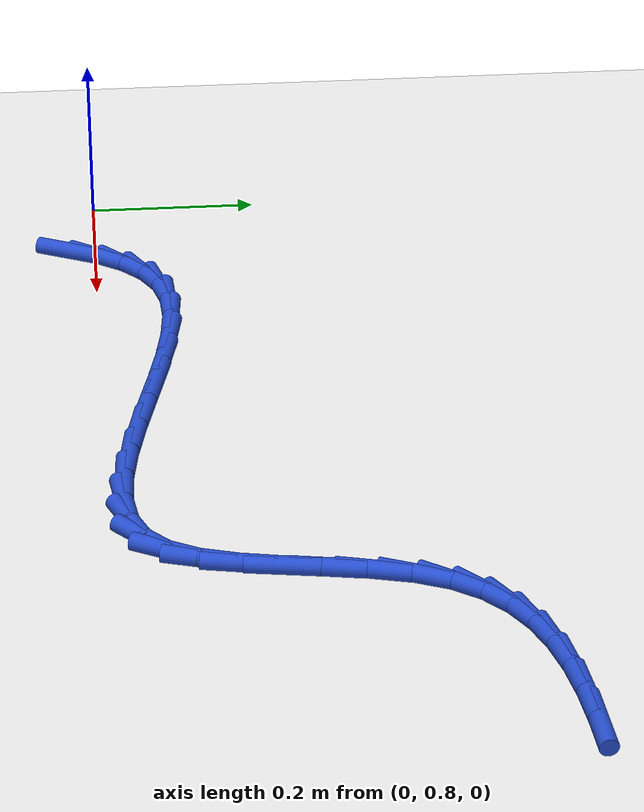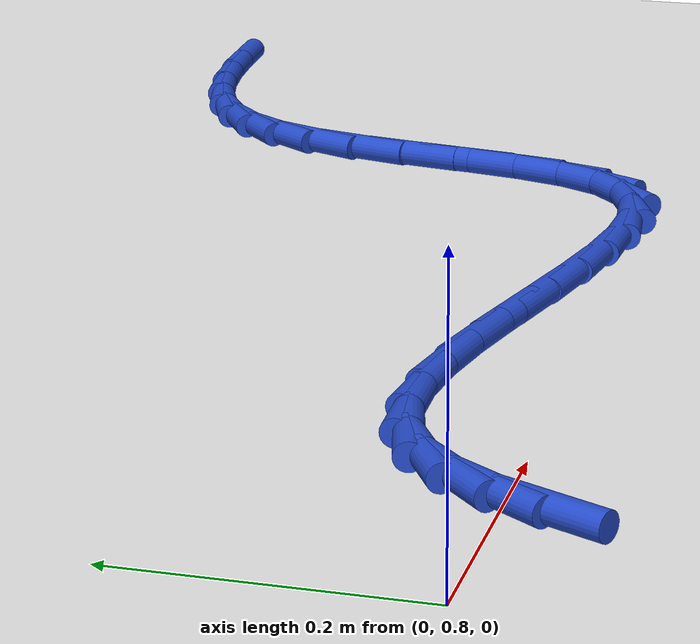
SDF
<sdf version="1.6">
 <world name="default">
  <model name="ground_plane">
   <static>1</static>
   <link name="link">
    <collision name="collision">
     <geometry><plane><normal>0 0 1</normal><size>100 100</size></plane></geometry>
     <surface><friction><ode><mu>100</mu><mu2>50</mu2></ode></friction></surface>
    </collision>
    <visual name="visual">
     <cast_shadows>0</cast_shadows>
     <geometry><plane><normal>0 0 1</normal><size>100 100</size></plane></geometry>
     <material>
      <script><uri>file://media/materials/scripts/gazebo.material</uri><name>Gazebo/WhiteGlow</name></script>
     </material>
    </visual>
   </link>
  </model>
  <model name="line">
   <link name="link_17">
    <pose>0.11488590247011861 0.7683069570517295 0.01 0 1.57 1.1441653393790003</pose>
    <collision name="collision">
     <geometry><cylinder><radius>0.01</radius><length>0.08</length></cylinder></geometry>
    </collision>
    <visual name="visual">
     <material>
      <script><name>Gazebo/Blue</name><uri>file://media/materials/scripts/gazebo.material</uri></script>
     </material>
     <geometry><cylinder><radius>0.01</radius><length>0.08</length></cylinder></geometry>
    </visual>
   </link>
   <link name="link_18">
    <pose>0.13100987990893936 0.8037793783833346 0.01 0 1.57 0.9838257909820284</pose>
    <collision name="collision">
     <geometry><cylinder><radius>0.01</radius><length>0.08</length></cylinder></geometry>
    </collision>
    <visual name="visual">
     <material>
      <script><name>Gazebo/Blue</name><uri>file://media/materials/scripts/gazebo.material</uri></script>
     </material>
     <geometry><cylinder><radius>0.01</radius><length>0.08</length></cylinder></geometry>
    </visual>
   </link>
   <link name="link_19">
    <pose>0.1509992072125109 0.8338305219257445 0.01 0 1.57 0.7740681221431515</pose>
    <collision name="collision">
     <geometry><cylinder><radius>0.01</radius><length>0.08</length></cylinder></geometry>
    </collision>
    <visual name="visual">
     <material>
      <script><name>Gazebo/Blue</name><uri>file://media/materials/scripts/gazebo.material</uri></script>
     </material>
     <geometry><cylinder><radius>0.01</radius><length>0.08</length></cylinder></geometry>
    </visual>
   </link>
   <link name="link_20">
    <pose>0.17538833152242303 0.8576731550496365 0.01 0 1.57 0.5214742011759924</pose>
    <collision name="collision">
     <geometry><cylinder><radius>0.01</radius><length>0.08</length></cylinder></geometry>
    </collision>
    <visual name="visual">
     <material>
      <script><name>Gazebo/Blue</name><uri>file://media/materials/scripts/gazebo.material</uri></script>
     </material>
     <geometry><cylinder><radius>0.01</radius><length>0.08</length></cylinder></geometry>
    </visual>
   </link>
   <link name="link_21">
    <pose>0.2047116999802653 0.8745200451256875 0.01 0 1.57 0.2564635529898381</pose>
    <collision name="collision">
     <geometry><cylinder><radius>0.01</radius><length>0.08</length></cylinder></geometry>
    </collision>
    <visual name="visual">
     <material>
      <script><name>Gazebo/Blue</name><uri>file://media/materials/scripts/gazebo.material</uri></script>
     </material>
     <geometry><cylinder><radius>0.01</radius><length>0.08</length></cylinder></geometry>
    </visual>
   </link>
   <link name="link_22">
    <pose>0.23946821857374254 0.8836345380011811 0.01 0 1.57 0.04445835535896166</pose>
    <collision name="collision">
     <geometry><cylinder><radius>0.01</radius><length>0.08</length></cylinder></geometry>
    </collision>
    <visual name="visual">
     <material>
      <script><name>Gazebo/Blue</name><uri>file://media/materials/scripts/gazebo.material</uri></script>
     </material>
     <geometry><cylinder><radius>0.01</radius><length>0.08</length></cylinder></geometry>
    </visual>
   </link>
   <link name="link_23">
    <pose>0.2793631770077128 0.885409371740848 0.01 0 1.57 -0.0921269365347066</pose>
    <collision name="collision">
     <geometry><cylinder><radius>0.01</radius><length>0.08</length></cylinder></geometry>
    </collision>
    <visual name="visual">
     <material>
      <script><name>Gazebo/Blue</name><uri>file://media/materials/scripts/gazebo.material</uri></script>
     </material>
     <geometry><cylinder><radius>0.01</radius><length>0.08</length></cylinder></geometry>
    </visual>
   </link>
   <link name="link_24">
    <pose>0.32332126622617946 0.8813481514424115 0.01 0 1.57 -0.17607831083229047</pose>
    <collision name="collision">
     <geometry><cylinder><radius>0.01</radius><length>0.08</length></cylinder></geometry>
    </collision>
    <visual name="visual">
     <material>
      <script><name>Gazebo/Blue</name><uri>file://media/materials/scripts/gazebo.material</uri></script>
     </material>
     <geometry><cylinder><radius>0.01</radius><length>0.08</length></cylinder></geometry>
    </visual>
   </link>
   <link name="link_25">
    <pose>0.370234239746904 0.8730013553256086 0.01 0 1.57 -0.22347979675174884</pose>
    <collision name="collision">
     <geometry><cylinder><radius>0.01</radius><length>0.08</length></cylinder></geometry>
    </collision>
    <visual name="visual">
     <material>
      <script><name>Gazebo/Blue</name><uri>file://media/materials/scripts/gazebo.material</uri></script>
     </material>
     <geometry><cylinder><radius>0.01</radius><length>0.08</length></cylinder></geometry>
    </visual>
   </link>
   <link name="link_26">
    <pose>0.4189938510876488 0.8619194616101782 0.01 0 1.57 -0.24292428889392356</pose>
    <collision name="collision">
     <geometry><cylinder><radius>0.01</radius><length>0.08</length></cylinder></geometry>
    </collision>
    <visual name="visual">
     <material>
      <script><name>Gazebo/Blue</name><uri>file://media/materials/scripts/gazebo.material</uri></script>
     </material>
     <geometry><cylinder><radius>0.01</radius><length>0.08</length></cylinder></geometry>
    </visual>
   </link>
   <link name="link_27">
    <pose>0.46849185376617486 0.8496529485158576 0.01 0 1.57 -0.2376590550075612</pose>
    <collision name="collision">
     <geometry><cylinder><radius>0.01</radius><length>0.08</length></cylinder></geometry>
    </collision>
    <visual name="visual">
     <material>
      <script><name>Gazebo/Blue</name><uri>file://media/materials/scripts/gazebo.material</uri></script>
     </material>
     <geometry><cylinder><radius>0.01</radius><length>0.08</length></cylinder></geometry>
    </visual>
   </link>
   <link name="link_28">
    <pose>0.5176200013002447 0.8377522942623854 0.01 0 1.57 -0.20654608577921593</pose>
    <collision name="collision">
     <geometry><cylinder><radius>0.01</radius><length>0.08</length></cylinder></geometry>
    </collision>
    <visual name="visual">
     <material>
      <script><name>Gazebo/Blue</name><uri>file://media/materials/scripts/gazebo.material</uri></script>
     </material>
     <geometry><cylinder><radius>0.01</radius><length>0.08</length></cylinder></geometry>
    </visual>
   </link>
   <link name="link_29">
    <pose>0.5652700472076201 0.8277679770694997 0.01 0 1.57 -0.14363270235722891</pose>
    <collision name="collision">
     <geometry><cylinder><radius>0.01</radius><length>0.08</length></cylinder></geometry>
    </collision>
    <visual name="visual">
     <material>
      <script><name>Gazebo/Blue</name><uri>file://media/materials/scripts/gazebo.material</uri></script>
     </material>
     <geometry><cylinder><radius>0.01</radius><length>0.08</length></cylinder></geometry>
    </visual>
   </link>
   <link name="link_30">
    <pose>0.6103337450060623 0.8212504751569379 0.01 0 1.57 -0.03624809785809501</pose>
    <collision name="collision">
     <geometry><cylinder><radius>0.01</radius><length>0.08</length></cylinder></geometry>
    </collision>
    <visual name="visual">
     <material>
      <script><name>Gazebo/Blue</name><uri>file://media/materials/scripts/gazebo.material</uri></script>
     </material>
     <geometry><cylinder><radius>0.01</radius><length>0.08</length></cylinder></geometry>
    </visual>
   </link>
   <link name="link_31">
    <pose>0.6517028482133338 0.8197502667444387 0.01 0 1.57 0.1377086213476879</pose>
    <collision name="collision">
     <geometry><cylinder><radius>0.01</radius><length>0.08</length></cylinder></geometry>
    </collision>
    <visual name="visual">
     <material>
      <script><name>Gazebo/Blue</name><uri>file://media/materials/scripts/gazebo.material</uri></script>
     </material>
     <geometry><cylinder><radius>0.01</radius><length>0.08</length></cylinder></geometry>
    </visual>
   </link>
   <link name="link_32">
    <pose>0.6882691103471957 0.8248178300517399 0.01 0 1.57 0.4062106025662297</pose>
    <collision name="collision">
     <geometry><cylinder><radius>0.01</radius><length>0.08</length></cylinder></geometry>
    </collision>
    <visual name="visual">
     <material>
      <script><name>Gazebo/Blue</name><uri>file://media/materials/scripts/gazebo.material</uri></script>
     </material>
     <geometry><cylinder><radius>0.01</radius><length>0.08</length></cylinder></geometry>
    </visual>
   </link>
   <link name="link_33">
    <pose>0.7189242849254107 0.8380036432985797 0.01 0 1.57 0.7677330033355623</pose>
    <collision name="collision">
     <geometry><cylinder><radius>0.01</radius><length>0.08</length></cylinder></geometry>
    </collision>
    <visual name="visual">
     <material>
      <script><name>Gazebo/Blue</name><uri>file://media/materials/scripts/gazebo.material</uri></script>
     </material>
     <geometry><cylinder><radius>0.01</radius><length>0.08</length></cylinder></geometry>
    </visual>
   </link>
   <link name="link_34">
    <pose>0.7425769982312006 0.8608351205123197 0.01 0 1.57 1.0967866905146695</pose>
    <collision name="collision">
     <geometry><cylinder><radius>0.01</radius><length>0.08</length></cylinder></geometry>
    </collision>
    <visual name="visual">
     <material>
      <script><name>Gazebo/Blue</name><uri>file://media/materials/scripts/gazebo.material</uri></script>
     </material>
     <geometry><cylinder><radius>0.01</radius><length>0.08</length></cylinder></geometry>
    </visual>
   </link>
   <link name="link_35">
    <pose>0.7592445493013653 0.8933241777582319 0.01 0 1.57 1.289605686738009</pose>
    <collision name="collision">
     <geometry><cylinder><radius>0.01</radius><length>0.08</length></cylinder></geometry>
    </collision>
    <visual name="visual">
     <material>
      <script><name>Gazebo/Blue</name><uri>file://media/materials/scripts/gazebo.material</uri></script>
     </material>
     <geometry><cylinder><radius>0.01</radius><length>0.08</length></cylinder></geometry>
    </visual>
   </link>
   <link name="link_36">
    <pose>0.7707204703533036 0.9330547127736274 0.01 0 1.57 1.3870984843166103</pose>
    <collision name="collision">
     <geometry><cylinder><radius>0.01</radius><length>0.08</length></cylinder></geometry>
    </collision>
    <visual name="visual">
     <material>
      <script><name>Gazebo/Blue</name><uri>file://media/materials/scripts/gazebo.material</uri></script>
     </material>
     <geometry><cylinder><radius>0.01</radius><length>0.08</length></cylinder></geometry>
    </visual>
   </link>
   <link name="link_37">
    <pose>0.778958047722516 0.9773922477295035 0.01 0 1.57 1.421779429042974</pose>
    <collision name="collision">
     <geometry><cylinder><radius>0.01</radius><length>0.08</length></cylinder></geometry>
    </collision>
    <visual name="visual">
     <material>
      <script><name>Gazebo/Blue</name><uri>file://media/materials/scripts/gazebo.material</uri></script>
     </material>
     <geometry><cylinder><radius>0.01</radius><length>0.08</length></cylinder></geometry>
    </visual>
   </link>
   <link name="link_38">
    <pose>0.7859105677445027 1.0237023047968568 0.01 0 1.57 1.4053762811008794</pose>
    <collision name="collision">
     <geometry><cylinder><radius>0.01</radius><length>0.08</length></cylinder></geometry>
    </collision>
    <visual name="visual">
     <material>
      <script><name>Gazebo/Blue</name><uri>file://media/materials/scripts/gazebo.material</uri></script>
     </material>
     <geometry><cylinder><radius>0.01</radius><length>0.08</length></cylinder></geometry>
    </visual>
   </link>
   <link name="link_39">
    <pose>0.7935313167547653 1.0693504061466859 0.01 0 1.57 1.333513691290035</pose>
    <collision name="collision">
     <geometry><cylinder><radius>0.01</radius><length>0.08</length></cylinder></geometry>
    </collision>
    <visual name="visual">
     <material>
      <script><name>Gazebo/Blue</name><uri>file://media/materials/scripts/gazebo.material</uri></script>
     </material>
     <geometry><cylinder><radius>0.01</radius><length>0.08</length></cylinder></geometry>
    </visual>
   </link>
   <link name="link_40">
    <pose>0.8037735810888035 1.1117020739499865 0.01 0 1.57 1.1870362396480312</pose>
    <collision name="collision">
     <geometry><cylinder><radius>0.01</radius><length>0.08</length></cylinder></geometry>
    </collision>
    <visual name="visual">
     <material>
      <script><name>Gazebo/Blue</name><uri>file://media/materials/scripts/gazebo.material</uri></script>
     </material>
     <geometry><cylinder><radius>0.01</radius><length>0.08</length></cylinder></geometry>
    </visual>
   </link>
   <link name="link_41">
    <pose>0.8185207587202704 1.148224946677394 0.01 0 1.57 0.9824375289127192</pose>
    <collision name="collision">
     <geometry><cylinder><radius>0.01</radius><length>0.08</length></cylinder></geometry>
    </collision>
    <visual name="visual">
     <material>
      <script><name>Gazebo/Blue</name><uri>file://media/materials/scripts/gazebo.material</uri></script>
     </material>
     <geometry><cylinder><radius>0.01</radius><length>0.08</length></cylinder></geometry>
    </visual>
   </link>
   <link name="link_42">
    <pose>0.8384680415801128 1.1781227916925188 0.01 0 1.57 0.7665219037315856</pose>
    <collision name="collision">
     <geometry><cylinder><radius>0.01</radius><length>0.08</length></cylinder></geometry>
    </collision>
    <visual name="visual">
     <material>
      <script><name>Gazebo/Blue</name><uri>file://media/materials/scripts/gazebo.material</uri></script>
     </material>
     <geometry><cylinder><radius>0.01</radius><length>0.08</length></cylinder></geometry>
    </visual>
   </link>
   <link name="link_43">
    <pose>0.8633171152033959 1.2020510228725036 0.01 0 1.57 0.5651695614560587</pose>
    <collision name="collision">
     <geometry><cylinder><radius>0.01</radius><length>0.08</length></cylinder></geometry>
    </collision>
    <visual name="visual">
     <material>
      <script><name>Gazebo/Blue</name><uri>file://media/materials/scripts/gazebo.material</uri></script>
     </material>
     <geometry><cylinder><radius>0.01</radius><length>0.08</length></cylinder></geometry>
    </visual>
   </link>
   <link name="link_44">
    <pose>0.8927391080504764 1.2207097020918718 0.01 0 1.57 0.3963509982696934</pose>
    <collision name="collision">
     <geometry><cylinder><radius>0.01</radius><length>0.08</length></cylinder></geometry>
    </collision>
    <visual name="visual">
     <material>
      <script><name>Gazebo/Blue</name><uri>file://media/materials/scripts/gazebo.material</uri></script>
     </material>
     <geometry><cylinder><radius>0.01</radius><length>0.08</length></cylinder></geometry>
    </visual>
   </link>
   <link name="link_45">
    <pose>0.9264051485817119 1.2347988912251484 0.01 0 1.57 0.26551727182705664</pose>
    <collision name="collision">
     <geometry><cylinder><radius>0.01</radius><length>0.08</length></cylinder></geometry>
    </collision>
    <visual name="visual">
     <material>
      <script><name>Gazebo/Blue</name><uri>file://media/materials/scripts/gazebo.material</uri></script>
     </material>
     <geometry><cylinder><radius>0.01</radius><length>0.08</length></cylinder></geometry>
    </visual>
   </link>
   <link name="link_46">
    <pose>0.963986365257459 1.2450186521468571 0.01 0 1.57 0.16961556980617587</pose>
    <collision name="collision">
     <geometry><cylinder><radius>0.01</radius><length>0.08</length></cylinder></geometry>
    </collision>
    <visual name="visual">
     <material>
      <script><name>Gazebo/Blue</name><uri>file://media/materials/scripts/gazebo.material</uri></script>
     </material>
     <geometry><cylinder><radius>0.01</radius><length>0.08</length></cylinder></geometry>
    </visual>
   </link>
   <link name="link_47">
    <pose>1.0051538865380751 1.2520690467315219 0.01 0 1.57 0.1027565488308258</pose>
    <collision name="collision">
     <geometry><cylinder><radius>0.01</radius><length>0.08</length></cylinder></geometry>
    </collision>
    <visual name="visual">
     <material>
      <script><name>Gazebo/Blue</name><uri>file://media/materials/scripts/gazebo.material</uri></script>
     </material>
     <geometry><cylinder><radius>0.01</radius><length>0.08</length></cylinder></geometry>
    </visual>
   </link>
   <link name="link_48">
    <pose>1.0495788408839177 1.2566501368536676 0.01 0 1.57 0.05931026710495304</pose>
    <collision name="collision">
     <geometry><cylinder><radius>0.01</radius><length>0.08</length></cylinder></geometry>
    </collision>
    <visual name="visual">
     <material>
      <script><name>Gazebo/Blue</name><uri>file://media/materials/scripts/gazebo.material</uri></script>
     </material>
     <geometry><cylinder><radius>0.01</radius><length>0.08</length></cylinder></geometry>
    </visual>
   </link>
  </model>
 </world>
</sdf>
